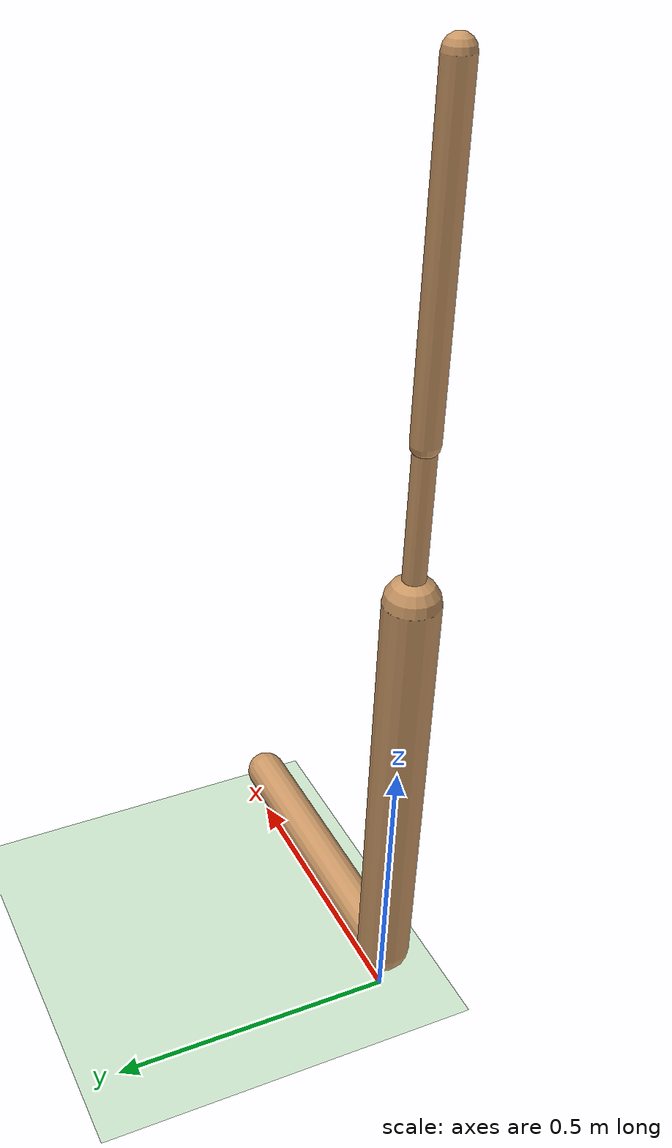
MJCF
<mujoco model="walker2d">
  <compiler angle="degree" inertiafromgeom="true" />
  <default>
    <joint armature="0.01" damping=".1" limited="true" />
    <geom conaffinity="0" condim="3" contype="1" density="1000" friction=".7 .1 .1" rgba="0.8 0.6 .4 1" />
  </default>
  <option integrator="RK4" timestep="0.002" />
  <worldbody>
    <light cutoff="100" diffuse="1 1 1" dir="-0 0 -1.3" directional="true" exponent="1" pos="0 0 1.3" specular=".1 .1 .1" />
    <geom conaffinity="1" condim="3" name="floor" pos="0 0 0" rgba="0.8 0.9 0.8 1" size="40 40 40" type="plane" material="MatPlane" />
    <body name="torso" pos="0 0 1.3530388534069062">
      <camera name="track" mode="trackcom" pos="0 -5 -1.25" xyaxes="1 0 0 0 0 1" />
      <joint armature="0" axis="1 0 0" damping="0" limited="false" name="rootx" pos="0 0 -1.25" stiffness="0" type="slide" />
      <joint armature="0" axis="0 0 1" damping="0" limited="false" name="rootz" pos="0 0 -1.25" ref="1.25" stiffness="0" type="slide" />
      <joint armature="0" axis="0 1 0" damping="0" limited="false" name="rooty" pos="0 0 0" stiffness="0" type="hinge" />
      <geom friction="0.9" name="torso_geom" size="0.022429781034588814 0.25295647978782654" type="capsule" />
      <body name="thigh" pos="0 0 -0.25295647978782654">
        <joint axis="0 -1 0" name="thigh_joint" pos="0 0 0" range="-150 0" type="hinge" />
        <site name="torso_thigh_site" pos="0 0 0" size="0.01" type="sphere" rgba="1 0 0 0.5" />
        <geom friction="0.9" pos="0 0 -0.13096261024475098" name="thigh_geom" size="0.018176984041929245 0.13096261024475098" type="capsule" />
        <body name="leg" pos="0 0 -0.6310037970542908">
          <joint axis="0 -1 0" name="leg_joint" pos="0 0 0.3690785765647888" range="-150 0" type="hinge" />
          <site name="thigh_leg_site" pos="0 0 0.25" size="0.01" type="sphere" rgba="1 0 0 0.5" />
          <geom friction="0.9" name="leg_geom" size="0.04539922624826431 0.3690785765647888" type="capsule" />
          <body name="foot" pos="0.505754828453064 0 -0.4690785765647888">
            <joint axis="0 -1 0" name="foot_joint" pos="-0.505754828453064 0 0.1" range="-45 45" type="hinge" />
            <site name="leg_foot_site" pos="-0.2 0 0.1" size="0.01" type="sphere" rgba="1 0 0 0.5" />
            <geom friction="0.9" pos="-0.252877414226532 0 0.1" quat="0.70710678118654757 0 -0.70710678118654746 0" name="foot_geom" size="0.03682732954621315 0.252877414226532" type="capsule" />
          </body>
        </body>
      </body>

      <body name="thigh_left" pos="0 0 -0.25295647978782654">
        <joint axis="0 -1 0" name="thigh_left_joint" pos="0 0 0" range="-150 0" type="hinge" />
        <site name="torso_thigh_left_site" pos="0 0 0" size="0.01" type="sphere" rgba="1 0 0 0.5" />
        <geom friction="0.9" name="thigh_left_geom" rgba=".7 .3 .6 1" size="0.018176984041929245 0.13096261024475098" pos="0 0 -0.13096261024475098" type="capsule" />
        <body name="leg_left" pos="0 0 -0.6310037970542908">
          <joint axis="0 -1 0" name="leg_left_joint" pos="0 0 0.3690785765647888" range="-150 0" type="hinge" />
          <site name="thigh_leg_left_site" pos="0 0 0.25" size="0.01" type="sphere" rgba="1 0 0 0.5" />
          <geom friction="0.9" name="leg_left_geom" rgba=".7 .3 .6 1" size="0.04539922624826431 0.3690785765647888" type="capsule" />
          <body name="foot_left" pos="0.505754828453064 0 -0.4690785765647888">
            <joint axis="0 -1 0" name="foot_left_joint" pos="-0.505754828453064 0 0.1" range="-45 45" type="hinge" />
            <site name="leg_foot_left_site" pos="-0.2 0 0.1" size="0.01" type="sphere" rgba="1 0 0 0.5" />
            <geom friction="1.9" name="foot_left_geom" rgba=".7 .3 .6 1" size="0.03682732954621315 0.252877414226532" pos="-0.252877414226532 0 0.1" type="capsule" quat="0.70710678118654757 0 -0.70710678118654746 0" />
          </body>
        </body>
      </body>
    </body>
  </worldbody>
  <actuator>

    <motor ctrllimited="true" ctrlrange="-1.0 1.0" gear="7.692516697389973" joint="thigh_joint" />
    <motor ctrllimited="true" ctrlrange="-1.0 1.0" gear="190.17601721651576" joint="leg_joint" />
    <motor ctrllimited="true" ctrlrange="-1.0 1.0" gear="95.26820826547858" joint="foot_joint" />
    <motor ctrllimited="true" ctrlrange="-1.0 1.0" gear="7.692516697389973" joint="thigh_left_joint" />
    <motor ctrllimited="true" ctrlrange="-1.0 1.0" gear="190.17601721651576" joint="leg_left_joint" />
    <motor ctrllimited="true" ctrlrange="-1.0 1.0" gear="95.26820826547858" joint="foot_left_joint" />

  </actuator>
    <asset>
        <texture type="skybox" builtin="gradient" rgb1=".4 .5 .6" rgb2="0 0 0" width="100" height="100" />
        <texture builtin="flat" height="1278" mark="cross" markrgb="1 1 1" name="texgeom" random="0.01" rgb1="0.8 0.6 0.4" rgb2="0.8 0.6 0.4" type="cube" width="127" />
        <texture builtin="checker" height="100" name="texplane" rgb1="0 0 0" rgb2="0.8 0.8 0.8" type="2d" width="100" />
        <material name="MatPlane" reflectance="0.5" shininess="1" specular="1" texrepeat="60 60" texture="texplane" />
        <material name="geom" texture="texgeom" texuniform="true" />
    </asset>

  <sensor>
    <force site="torso_thigh_site" name="torso_thigh_sensor" />
    <force site="thigh_leg_site" name="thigh_leg_sensor" />
    <force site="leg_foot_site" name="leg_foot_sensor" />
    <force site="torso_thigh_left_site" name="torso_thigh_left_sensor" />
    <force site="thigh_leg_left_site" name="thigh_leg_left_sensor" />
    <force site="leg_foot_left_site" name="leg_foot_left_sensor" />
  </sensor>
</mujoco>
